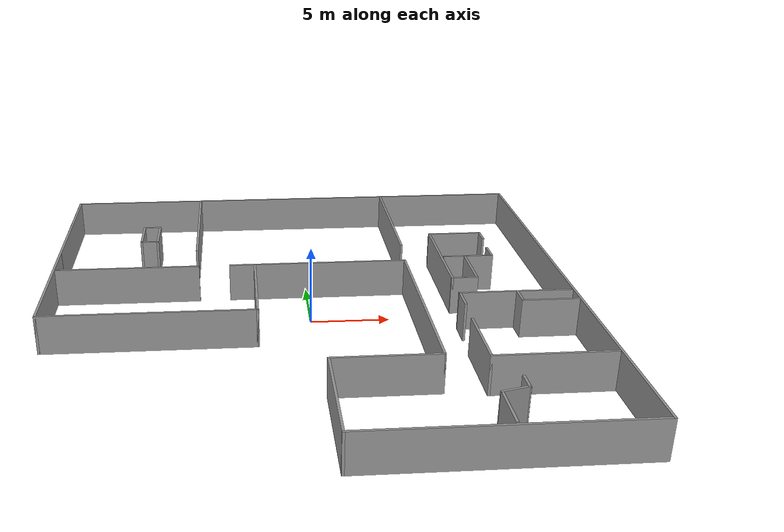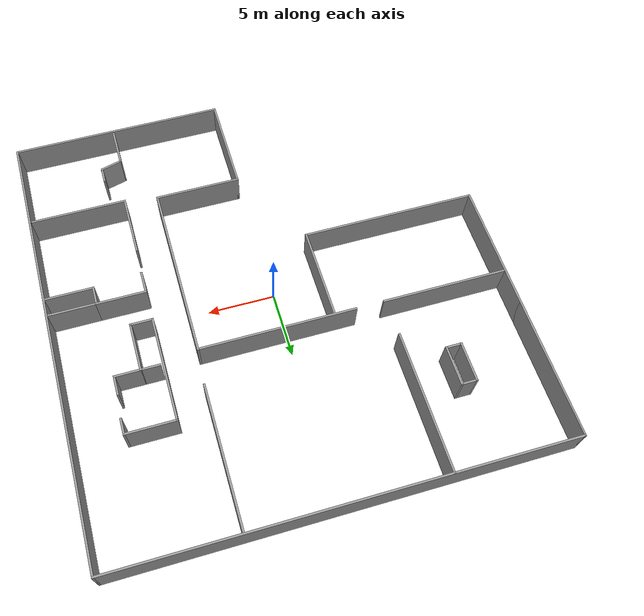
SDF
<?xml version='1.0'?>
<sdf version='1.6'>
  <model name='SnowberryCta'>
    <pose frame=''>-0.117801 0.057911 0 0 -0 0</pose>
    <link name='Wall_1'>
      <collision name='Wall_1_Collision'>
        <geometry>
          <box>
            <size>20.25 0.15 2.5</size>
          </box>
        </geometry>
        <pose frame=''>0 0 1.25 0 -0 0</pose>
      </collision>
      <visual name='Wall_1_Visual'>
        <pose frame=''>0 0 1.25 0 -0 0</pose>
        <geometry>
          <box>
            <size>20.25 0.15 2.5</size>
          </box>
        </geometry>
        <material>
          <script>
            <uri>file://media/materials/scripts/gazebo.material</uri>
            <name>Gazebo/Grey</name>
          </script>
          <ambient>1 1 1 1</ambient>
        </material>
      </visual>
      <pose frame=''>-16.425 6.875 0 0 -0 1.5708</pose>
    </link>
    <link name='Wall_11'>
      <collision name='Wall_11_Collision'>
        <geometry>
          <box>
            <size>20.25 0.15 2.5</size>
          </box>
        </geometry>
        <pose frame=''>0 0 1.25 0 -0 0</pose>
      </collision>
      <visual name='Wall_11_Visual'>
        <pose frame=''>0 0 1.25 0 -0 0</pose>
        <geometry>
          <box>
            <size>20.25 0.15 2.5</size>
          </box>
        </geometry>
        <material>
          <script>
            <uri>file://media/materials/scripts/gazebo.material</uri>
            <name>Gazebo/Grey</name>
          </script>
          <ambient>1 1 1 1</ambient>
        </material>
      </visual>
      <pose frame=''>-16.425 6.875 0 0 -0 1.5708</pose>
    </link>
    <link name='Wall_12'>
      <collision name='Wall_12_Collision'>
        <geometry>
          <box>
            <size>20.25 0.15 2.5</size>
          </box>
        </geometry>
        <pose frame=''>0 0 1.25 0 -0 0</pose>
      </collision>
      <visual name='Wall_12_Visual'>
        <pose frame=''>0 0 1.25 0 -0 0</pose>
        <geometry>
          <box>
            <size>20.25 0.15 2.5</size>
          </box>
        </geometry>
        <material>
          <script>
            <uri>file://media/materials/scripts/gazebo.material</uri>
            <name>Gazebo/Grey</name>
          </script>
          <ambient>1 1 1 1</ambient>
        </material>
      </visual>
      <pose frame=''>-16.425 6.875 0 0 0 -1.5708</pose>
    </link>
    <link name='Wall_14'>
      <collision name='Wall_14_Collision'>
        <geometry>
          <box>
            <size>20.25 0.15 2.5</size>
          </box>
        </geometry>
        <pose frame=''>0 0 1.25 0 -0 0</pose>
      </collision>
      <visual name='Wall_14_Visual'>
        <pose frame=''>0 0 1.25 0 -0 0</pose>
        <geometry>
          <box>
            <size>20.25 0.15 2.5</size>
          </box>
        </geometry>
        <material>
          <script>
            <uri>file://media/materials/scripts/gazebo.material</uri>
            <name>Gazebo/Grey</name>
          </script>
          <ambient>1 1 1 1</ambient>
        </material>
      </visual>
      <pose frame=''>-16.425 6.875 0 0 -0 1.5708</pose>
    </link>
    <link name='Wall_19'>
      <collision name='Wall_19_Collision'>
        <geometry>
          <box>
            <size>9.5 0.15 2.5</size>
          </box>
        </geometry>
        <pose frame=''>0 0 1.25 0 -0 0</pose>
      </collision>
      <visual name='Wall_19_Visual'>
        <pose frame=''>0 0 1.25 0 -0 0</pose>
        <geometry>
          <box>
            <size>9.5 0.15 2.5</size>
          </box>
        </geometry>
        <material>
          <script>
            <uri>file://media/materials/scripts/gazebo.material</uri>
            <name>Gazebo/Grey</name>
          </script>
          <ambient>1 1 1 1</ambient>
        </material>
      </visual>
      <pose frame=''>-11.7334 3.76219 0 0 -0 0</pose>
    </link>
    <link name='Wall_2'>
      <collision name='Wall_2_Collision'>
        <geometry>
          <box>
            <size>33 0.15 2.5</size>
          </box>
        </geometry>
        <pose frame=''>0 0 1.25 0 -0 0</pose>
      </collision>
      <visual name='Wall_2_Visual'>
        <pose frame=''>0 0 1.25 0 -0 0</pose>
        <geometry>
          <box>
            <size>33 0.15 2.5</size>
          </box>
        </geometry>
        <material>
          <script>
            <uri>file://media/materials/scripts/gazebo.material</uri>
            <name>Gazebo/Grey</name>
          </script>
          <ambient>1 1 1 1</ambient>
        </material>
      </visual>
      <pose frame=''>-1e-06 16.925 0 0 -0 0</pose>
    </link>
    <link name='Wall_21'>
      <collision name='Wall_21_Collision'>
        <geometry>
          <box>
            <size>10.5 0.15 2.5</size>
          </box>
        </geometry>
        <pose frame=''>0 0 1.25 0 -0 0</pose>
      </collision>
      <visual name='Wall_21_Visual'>
        <pose frame=''>0 0 1.25 0 -0 0</pose>
        <geometry>
          <box>
            <size>10.5 0.15 2.5</size>
          </box>
        </geometry>
        <material>
          <script>
            <uri>file://media/materials/scripts/gazebo.material</uri>
            <name>Gazebo/Grey</name>
          </script>
          <ambient>1 1 1 1</ambient>
        </material>
      </visual>
      <pose frame=''>-7.19843 11.7436 0 0 0 -1.5708</pose>
    </link>
    <link name='Wall_23'>
      <collision name='Wall_23_Collision'>
        <geometry>
          <box>
            <size>10.5 0.15 2.5</size>
          </box>
        </geometry>
        <pose frame=''>0 0 1.25 0 -0 0</pose>
      </collision>
      <visual name='Wall_23_Visual'>
        <pose frame=''>0 0 1.25 0 -0 0</pose>
        <geometry>
          <box>
            <size>10.5 0.15 2.5</size>
          </box>
        </geometry>
        <material>
          <script>
            <uri>file://media/materials/scripts/gazebo.material</uri>
            <name>Gazebo/Grey</name>
          </script>
          <ambient>1 1 1 1</ambient>
        </material>
      </visual>
      <pose frame=''>6.88223 11.6728 0 0 0 -1.5708</pose>
    </link>
    <link name='Wall_25'>
      <collision name='Wall_25_Collision'>
        <geometry>
          <box>
            <size>13.25 0.15 2.5</size>
          </box>
        </geometry>
        <pose frame=''>0 0 1.25 0 -0 0</pose>
      </collision>
      <visual name='Wall_25_Visual'>
        <pose frame=''>0 0 1.25 0 -0 0</pose>
        <geometry>
          <box>
            <size>13.25 0.15 2.5</size>
          </box>
        </geometry>
        <material>
          <script>
            <uri>file://media/materials/scripts/gazebo.material</uri>
            <name>Gazebo/Grey</name>
          </script>
          <ambient>1 1 1 1</ambient>
        </material>
      </visual>
      <pose frame=''>-9.875 -3.175 0 0 -0 0</pose>
    </link>
    <link name='Wall_26'>
      <collision name='Wall_26_Collision'>
        <geometry>
          <box>
            <size>7 0.15 2.5</size>
          </box>
        </geometry>
        <pose frame=''>0 0 1.25 0 -0 0</pose>
      </collision>
      <visual name='Wall_26_Visual'>
        <pose frame=''>0 0 1.25 0 -0 0</pose>
        <geometry>
          <box>
            <size>7 0.15 2.5</size>
          </box>
        </geometry>
        <material>
          <script>
            <uri>file://media/materials/scripts/gazebo.material</uri>
            <name>Gazebo/Grey</name>
          </script>
          <ambient>1 1 1 1</ambient>
        </material>
      </visual>
      <pose frame=''>-3.325 0.25 0 0 -0 1.5708</pose>
    </link>
    <link name='Wall_28'>
      <collision name='Wall_28_Collision'>
        <geometry>
          <box>
            <size>1.25 0.15 2.5</size>
          </box>
        </geometry>
        <pose frame=''>0 0 1.25 0 -0 0</pose>
      </collision>
      <visual name='Wall_28_Visual'>
        <pose frame=''>0 0 1.25 0 -0 0</pose>
        <geometry>
          <box>
            <size>1.25 0.15 2.5</size>
          </box>
        </geometry>
        <material>
          <script>
            <uri>file://media/materials/scripts/gazebo.material</uri>
            <name>Gazebo/Grey</name>
          </script>
          <ambient>1 1 1 1</ambient>
        </material>
      </visual>
      <pose frame=''>12.8258 7.91637 0 0 -0 1.5708</pose>
    </link>
    <link name='Wall_29'>
      <collision name='Wall_29_Collision'>
        <geometry>
          <box>
            <size>3.75 0.15 2.5</size>
          </box>
        </geometry>
        <pose frame=''>0 0 1.25 0 -0 0</pose>
      </collision>
      <visual name='Wall_29_Visual'>
        <pose frame=''>0 0 1.25 0 -0 0</pose>
        <geometry>
          <box>
            <size>3.75 0.15 2.5</size>
          </box>
        </geometry>
        <material>
          <script>
            <uri>file://media/materials/scripts/gazebo.material</uri>
            <name>Gazebo/Grey</name>
          </script>
          <ambient>1 1 1 1</ambient>
        </material>
      </visual>
      <pose frame=''>11.0258 8.46637 0 0 -0 3.14159</pose>
    </link>
    <link name='Wall_3'>
      <collision name='Wall_3_Collision'>
        <geometry>
          <box>
            <size>34 0.15 2.5</size>
          </box>
        </geometry>
        <pose frame=''>0 0 1.25 0 -0 0</pose>
      </collision>
      <visual name='Wall_3_Visual'>
        <pose frame=''>0 0 1.25 0 -0 0</pose>
        <geometry>
          <box>
            <size>34 0.15 2.5</size>
          </box>
        </geometry>
        <material>
          <script>
            <uri>file://media/materials/scripts/gazebo.material</uri>
            <name>Gazebo/Grey</name>
          </script>
          <ambient>1 1 1 1</ambient>
        </material>
      </visual>
      <pose frame=''>16.425 0 0 0 0 -1.5708</pose>
    </link>
    <link name='Wall_30'>
      <collision name='Wall_30_Collision'>
        <geometry>
          <box>
            <size>8 0.15 2.5</size>
          </box>
        </geometry>
        <pose frame=''>0 0 1.25 0 -0 0</pose>
      </collision>
      <visual name='Wall_30_Visual'>
        <pose frame=''>0 0 1.25 0 -0 0</pose>
        <geometry>
          <box>
            <size>8 0.15 2.5</size>
          </box>
        </geometry>
        <material>
          <script>
            <uri>file://media/materials/scripts/gazebo.material</uri>
            <name>Gazebo/Grey</name>
          </script>
          <ambient>1 1 1 1</ambient>
        </material>
      </visual>
      <pose frame=''>9.22582 4.54137 0 0 0 -1.5708</pose>
    </link>
    <link name='Wall_31'>
      <collision name='Wall_31_Collision'>
        <geometry>
          <box>
            <size>1.75 0.15 2.5</size>
          </box>
        </geometry>
        <pose frame=''>0 0 1.25 0 -0 0</pose>
      </collision>
      <visual name='Wall_31_Visual'>
        <pose frame=''>0 0 1.25 0 -0 0</pose>
        <geometry>
          <box>
            <size>1.75 0.15 2.5</size>
          </box>
        </geometry>
        <material>
          <script>
            <uri>file://media/materials/scripts/gazebo.material</uri>
            <name>Gazebo/Grey</name>
          </script>
          <ambient>1 1 1 1</ambient>
        </material>
      </visual>
      <pose frame=''>10.0258 0.616369 0 0 -0 0</pose>
    </link>
    <link name='Wall_32'>
      <collision name='Wall_32_Collision'>
        <geometry>
          <box>
            <size>3.75 0.15 2.5</size>
          </box>
        </geometry>
        <pose frame=''>0 0 1.25 0 -0 0</pose>
      </collision>
      <visual name='Wall_32_Visual'>
        <pose frame=''>0 0 1.25 0 -0 0</pose>
        <geometry>
          <box>
            <size>3.75 0.15 2.5</size>
          </box>
        </geometry>
        <material>
          <script>
            <uri>file://media/materials/scripts/gazebo.material</uri>
            <name>Gazebo/Grey</name>
          </script>
          <ambient>1 1 1 1</ambient>
        </material>
      </visual>
      <pose frame=''>10.8258 2.41637 0 0 -0 1.5708</pose>
    </link>
    <link name='Wall_33'>
      <collision name='Wall_33_Collision'>
        <geometry>
          <box>
            <size>2 0.15 2.5</size>
          </box>
        </geometry>
        <pose frame=''>0 0 1.25 0 -0 0</pose>
      </collision>
      <visual name='Wall_33_Visual'>
        <pose frame=''>0 0 1.25 0 -0 0</pose>
        <geometry>
          <box>
            <size>2 0.15 2.5</size>
          </box>
        </geometry>
        <material>
          <script>
            <uri>file://media/materials/scripts/gazebo.material</uri>
            <name>Gazebo/Grey</name>
          </script>
          <ambient>1 1 1 1</ambient>
        </material>
      </visual>
      <pose frame=''>11.7508 4.21637 0 0 -0 0</pose>
    </link>
    <link name='Wall_34'>
      <collision name='Wall_34_Collision'>
        <geometry>
          <box>
            <size>1.5 0.15 2.5</size>
          </box>
        </geometry>
        <pose frame=''>0 0 1.25 0 -0 0</pose>
      </collision>
      <visual name='Wall_34_Visual'>
        <pose frame=''>0 0 1.25 0 -0 0</pose>
        <geometry>
          <box>
            <size>1.5 0.15 2.5</size>
          </box>
        </geometry>
        <material>
          <script>
            <uri>file://media/materials/scripts/gazebo.material</uri>
            <name>Gazebo/Grey</name>
          </script>
          <ambient>1 1 1 1</ambient>
        </material>
      </visual>
      <pose frame=''>12.6758 4.89137 0 0 -0 1.5708</pose>
    </link>
    <link name='Wall_36'>
      <collision name='Wall_36_Collision'>
        <geometry>
          <box>
            <size>1.5 0.15 2.5</size>
          </box>
        </geometry>
        <pose frame=''>0 0 1.25 0 -0 0</pose>
      </collision>
      <visual name='Wall_36_Visual'>
        <pose frame=''>0 0 1.25 0 -0 0</pose>
        <geometry>
          <box>
            <size>1.5 0.15 2.5</size>
          </box>
        </geometry>
        <material>
          <script>
            <uri>file://media/materials/scripts/gazebo.material</uri>
            <name>Gazebo/Grey</name>
          </script>
          <ambient>1 1 1 1</ambient>
        </material>
      </visual>
      <pose frame=''>10.1508 4.21637 0 0 -0 3.14159</pose>
    </link>
    <link name='Wall_38'>
      <collision name='Wall_38_Collision'>
        <geometry>
          <box>
            <size>1.75 0.15 2.5</size>
          </box>
        </geometry>
        <pose frame=''>0 0 1.25 0 -0 0</pose>
      </collision>
      <visual name='Wall_38_Visual'>
        <pose frame=''>0 0 1.25 0 -0 0</pose>
        <geometry>
          <box>
            <size>1.75 0.15 2.5</size>
          </box>
        </geometry>
        <material>
          <script>
            <uri>file://media/materials/scripts/gazebo.material</uri>
            <name>Gazebo/Grey</name>
          </script>
          <ambient>1 1 1 1</ambient>
        </material>
      </visual>
      <pose frame=''>9.21721 -2.51795 0 0 -0 1.5708</pose>
    </link>
    <link name='Wall_39'>
      <collision name='Wall_39_Collision'>
        <geometry>
          <box>
            <size>3.75 0.15 2.5</size>
          </box>
        </geometry>
        <pose frame=''>0 0 1.25 0 -0 0</pose>
      </collision>
      <visual name='Wall_39_Visual'>
        <pose frame=''>0 0 1.25 0 -0 0</pose>
        <geometry>
          <box>
            <size>3.75 0.15 2.5</size>
          </box>
        </geometry>
        <material>
          <script>
            <uri>file://media/materials/scripts/gazebo.material</uri>
            <name>Gazebo/Grey</name>
          </script>
          <ambient>1 1 1 1</ambient>
        </material>
      </visual>
      <pose frame=''>11.0172 -1.71795 0 0 -0 0</pose>
    </link>
    <link name='Wall_4'>
      <collision name='Wall_4_Collision'>
        <geometry>
          <box>
            <size>16.25 0.15 2.5</size>
          </box>
        </geometry>
        <pose frame=''>0 0 1.25 0 -0 0</pose>
      </collision>
      <visual name='Wall_4_Visual'>
        <pose frame=''>0 0 1.25 0 -0 0</pose>
        <geometry>
          <box>
            <size>16.25 0.15 2.5</size>
          </box>
        </geometry>
        <material>
          <script>
            <uri>file://media/materials/scripts/gazebo.material</uri>
            <name>Gazebo/Grey</name>
          </script>
          <ambient>1 1 1 1</ambient>
        </material>
      </visual>
      <pose frame=''>8.375 -16.925 0 0 -0 3.14159</pose>
    </link>
    <link name='Wall_40'>
      <collision name='Wall_40_Collision'>
        <geometry>
          <box>
            <size>1.5 0.15 2.5</size>
          </box>
        </geometry>
        <pose frame=''>0 0 1.25 0 -0 0</pose>
      </collision>
      <visual name='Wall_40_Visual'>
        <pose frame=''>0 0 1.25 0 -0 0</pose>
        <geometry>
          <box>
            <size>1.5 0.15 2.5</size>
          </box>
        </geometry>
        <material>
          <script>
            <uri>file://media/materials/scripts/gazebo.material</uri>
            <name>Gazebo/Grey</name>
          </script>
          <ambient>1 1 1 1</ambient>
        </material>
      </visual>
      <pose frame=''>12.8172 -2.39295 0 0 0 -1.5708</pose>
    </link>
    <link name='Wall_41'>
      <collision name='Wall_41_Collision'>
        <geometry>
          <box>
            <size>3.75 0.15 2.5</size>
          </box>
        </geometry>
        <pose frame=''>0 0 1.25 0 -0 0</pose>
      </collision>
      <visual name='Wall_41_Visual'>
        <pose frame=''>0 0 1.25 0 -0 0</pose>
        <geometry>
          <box>
            <size>3.75 0.15 2.5</size>
          </box>
        </geometry>
        <material>
          <script>
            <uri>file://media/materials/scripts/gazebo.material</uri>
            <name>Gazebo/Grey</name>
          </script>
          <ambient>1 1 1 1</ambient>
        </material>
      </visual>
      <pose frame=''>14.6172 -3.06795 0 0 -0 0</pose>
    </link>
    <link name='Wall_43'>
      <collision name='Wall_43_Collision'>
        <geometry>
          <box>
            <size>3.75 0.15 2.5</size>
          </box>
        </geometry>
        <pose frame=''>0 0 1.25 0 -0 0</pose>
      </collision>
      <visual name='Wall_43_Visual'>
        <pose frame=''>0 0 1.25 0 -0 0</pose>
        <geometry>
          <box>
            <size>3.75 0.15 2.5</size>
          </box>
        </geometry>
        <material>
          <script>
            <uri>file://media/materials/scripts/gazebo.material</uri>
            <name>Gazebo/Grey</name>
          </script>
          <ambient>1 1 1 1</ambient>
        </material>
      </visual>
      <pose frame=''>14.6172 -1.71795 0 0 -0 0</pose>
    </link>
    <link name='Wall_45'>
      <collision name='Wall_45_Collision'>
        <geometry>
          <box>
            <size>4.75 0.15 2.5</size>
          </box>
        </geometry>
        <pose frame=''>0 0 1.25 0 -0 0</pose>
      </collision>
      <visual name='Wall_45_Visual'>
        <pose frame=''>0 0 1.25 0 -0 0</pose>
        <geometry>
          <box>
            <size>4.75 0.15 2.5</size>
          </box>
        </geometry>
        <material>
          <script>
            <uri>file://media/materials/scripts/gazebo.material</uri>
            <name>Gazebo/Grey</name>
          </script>
          <ambient>1 1 1 1</ambient>
        </material>
      </visual>
      <pose frame=''>9.14645 -7.6699 0 0 0 -1.5708</pose>
    </link>
    <link name='Wall_46'>
      <collision name='Wall_46_Collision'>
        <geometry>
          <box>
            <size>7.25 0.15 2.5</size>
          </box>
        </geometry>
        <pose frame=''>0 0 1.25 0 -0 0</pose>
      </collision>
      <visual name='Wall_46_Visual'>
        <pose frame=''>0 0 1.25 0 -0 0</pose>
        <geometry>
          <box>
            <size>7.25 0.15 2.5</size>
          </box>
        </geometry>
        <material>
          <script>
            <uri>file://media/materials/scripts/gazebo.material</uri>
            <name>Gazebo/Grey</name>
          </script>
          <ambient>1 1 1 1</ambient>
        </material>
      </visual>
      <pose frame=''>12.6965 -9.9699 0 0 -0 0</pose>
    </link>
    <link name='Wall_48'>
      <collision name='Wall_48_Collision'>
        <geometry>
          <box>
            <size>1.25 0.15 2.5</size>
          </box>
        </geometry>
        <pose frame=''>0 0 1.25 0 -0 0</pose>
      </collision>
      <visual name='Wall_48_Visual'>
        <pose frame=''>0 0 1.25 0 -0 0</pose>
        <geometry>
          <box>
            <size>1.25 0.15 2.5</size>
          </box>
        </geometry>
        <material>
          <script>
            <uri>file://media/materials/scripts/gazebo.material</uri>
            <name>Gazebo/Grey</name>
          </script>
          <ambient>1 1 1 1</ambient>
        </material>
      </visual>
      <pose frame=''>10.2786 -12.8541 0 0 0 -1.5708</pose>
    </link>
    <link name='Wall_49'>
      <collision name='Wall_49_Collision'>
        <geometry>
          <box>
            <size>1.75 0.15 2.5</size>
          </box>
        </geometry>
        <pose frame=''>0 0 1.25 0 -0 0</pose>
      </collision>
      <visual name='Wall_49_Visual'>
        <pose frame=''>0 0 1.25 0 -0 0</pose>
        <geometry>
          <box>
            <size>1.75 0.15 2.5</size>
          </box>
        </geometry>
        <material>
          <script>
            <uri>file://media/materials/scripts/gazebo.material</uri>
            <name>Gazebo/Grey</name>
          </script>
          <ambient>1 1 1 1</ambient>
        </material>
      </visual>
      <pose frame=''>9.50582 -13.6111 0 0 0 -2.87979</pose>
    </link>
    <link name='Wall_5'>
      <collision name='Wall_5_Collision'>
        <geometry>
          <box>
            <size>7.5 0.15 2.5</size>
          </box>
        </geometry>
        <pose frame=''>0 0 1.25 0 -0 0</pose>
      </collision>
      <visual name='Wall_5_Visual'>
        <pose frame=''>0 0 1.25 0 -0 0</pose>
        <geometry>
          <box>
            <size>7.5 0.15 2.5</size>
          </box>
        </geometry>
        <material>
          <script>
            <uri>file://media/materials/scripts/gazebo.material</uri>
            <name>Gazebo/Grey</name>
          </script>
          <ambient>1 1 1 1</ambient>
        </material>
      </visual>
      <pose frame=''>0.324999 -13.25 0 0 -0 1.5708</pose>
    </link>
    <link name='Wall_50'>
      <collision name='Wall_50_Collision'>
        <geometry>
          <box>
            <size>3 0.15 2.5</size>
          </box>
        </geometry>
        <pose frame=''>0 0 1.25 0 -0 0</pose>
      </collision>
      <visual name='Wall_50_Visual'>
        <pose frame=''>0 0 1.25 0 -0 0</pose>
        <geometry>
          <box>
            <size>3 0.15 2.5</size>
          </box>
        </geometry>
        <material>
          <script>
            <uri>file://media/materials/scripts/gazebo.material</uri>
            <name>Gazebo/Grey</name>
          </script>
          <ambient>1 1 1 1</ambient>
        </material>
      </visual>
      <pose frame=''>8.73308 -15.2432 0 0 0 -1.5708</pose>
    </link>
    <link name='Wall_52'>
      <collision name='Wall_52_Collision'>
        <geometry>
          <box>
            <size>3 0.15 2.5</size>
          </box>
        </geometry>
        <pose frame=''>0 0 1.25 0 -0 0</pose>
      </collision>
      <visual name='Wall_52_Visual'>
        <pose frame=''>0 0 1.25 0 -0 0</pose>
        <geometry>
          <box>
            <size>3 0.15 2.5</size>
          </box>
        </geometry>
        <material>
          <script>
            <uri>file://media/materials/scripts/gazebo.material</uri>
            <name>Gazebo/Grey</name>
          </script>
          <ambient>1 1 1 1</ambient>
        </material>
      </visual>
      <pose frame=''>-11.0901 9.85272 0 0 -0 1.5708</pose>
    </link>
    <link name='Wall_53'>
      <collision name='Wall_53_Collision'>
        <geometry>
          <box>
            <size>1.25 0.15 2.5</size>
          </box>
        </geometry>
        <pose frame=''>0 0 1.25 0 -0 0</pose>
      </collision>
      <visual name='Wall_53_Visual'>
        <pose frame=''>0 0 1.25 0 -0 0</pose>
        <geometry>
          <box>
            <size>1.25 0.15 2.5</size>
          </box>
        </geometry>
        <material>
          <script>
            <uri>file://media/materials/scripts/gazebo.material</uri>
            <name>Gazebo/Grey</name>
          </script>
          <ambient>1 1 1 1</ambient>
        </material>
      </visual>
      <pose frame=''>-10.5401 11.2777 0 0 -0 0</pose>
    </link>
    <link name='Wall_54'>
      <collision name='Wall_54_Collision'>
        <geometry>
          <box>
            <size>3 0.15 2.5</size>
          </box>
        </geometry>
        <pose frame=''>0 0 1.25 0 -0 0</pose>
      </collision>
      <visual name='Wall_54_Visual'>
        <pose frame=''>0 0 1.25 0 -0 0</pose>
        <geometry>
          <box>
            <size>3 0.15 2.5</size>
          </box>
        </geometry>
        <material>
          <script>
            <uri>file://media/materials/scripts/gazebo.material</uri>
            <name>Gazebo/Grey</name>
          </script>
          <ambient>1 1 1 1</ambient>
        </material>
      </visual>
      <pose frame=''>-9.99007 9.85272 0 0 0 -1.5708</pose>
    </link>
    <link name='Wall_55'>
      <collision name='Wall_55_Collision'>
        <geometry>
          <box>
            <size>1.25 0.15 2.5</size>
          </box>
        </geometry>
        <pose frame=''>0 0 1.25 0 -0 0</pose>
      </collision>
      <visual name='Wall_55_Visual'>
        <pose frame=''>0 0 1.25 0 -0 0</pose>
        <geometry>
          <box>
            <size>1.25 0.15 2.5</size>
          </box>
        </geometry>
        <material>
          <script>
            <uri>file://media/materials/scripts/gazebo.material</uri>
            <name>Gazebo/Grey</name>
          </script>
          <ambient>1 1 1 1</ambient>
        </material>
      </visual>
      <pose frame=''>-10.5401 8.42773 0 0 -0 3.14159</pose>
    </link>
    <link name='Wall_6'>
      <collision name='Wall_6_Collision'>
        <geometry>
          <box>
            <size>6.5 0.15 2.5</size>
          </box>
        </geometry>
        <pose frame=''>0 0 1.25 0 -0 0</pose>
      </collision>
      <visual name='Wall_6_Visual'>
        <pose frame=''>0 0 1.25 0 -0 0</pose>
        <geometry>
          <box>
            <size>6.5 0.15 2.5</size>
          </box>
        </geometry>
        <material>
          <script>
            <uri>file://media/materials/scripts/gazebo.material</uri>
            <name>Gazebo/Grey</name>
          </script>
          <ambient>1 1 1 1</ambient>
        </material>
      </visual>
      <pose frame=''>3.5 -9.575 0 0 -0 0</pose>
    </link>
    <link name='Wall_7'>
      <collision name='Wall_7_Collision'>
        <geometry>
          <box>
            <size>13.5 0.15 2.5</size>
          </box>
        </geometry>
        <pose frame=''>0 0 1.25 0 -0 0</pose>
      </collision>
      <visual name='Wall_7_Visual'>
        <pose frame=''>0 0 1.25 0 -0 0</pose>
        <geometry>
          <box>
            <size>13.5 0.15 2.5</size>
          </box>
        </geometry>
        <material>
          <script>
            <uri>file://media/materials/scripts/gazebo.material</uri>
            <name>Gazebo/Grey</name>
          </script>
          <ambient>1 1 1 1</ambient>
        </material>
      </visual>
      <pose frame=''>6.675 -2.9 0 0 -0 1.5708</pose>
    </link>
    <link name='Wall_8'>
      <collision name='Wall_8_Collision'>
        <geometry>
          <box>
            <size>11.75 0.15 2.5</size>
          </box>
        </geometry>
        <pose frame=''>0 0 1.25 0 -0 0</pose>
      </collision>
      <visual name='Wall_8_Visual'>
        <pose frame=''>0 0 1.25 0 -0 0</pose>
        <geometry>
          <box>
            <size>11.75 0.15 2.5</size>
          </box>
        </geometry>
        <material>
          <script>
            <uri>file://media/materials/scripts/gazebo.material</uri>
            <name>Gazebo/Grey</name>
          </script>
          <ambient>1 1 1 1</ambient>
        </material>
      </visual>
      <pose frame=''>0.874999 3.775 0 0 -0 3.14159</pose>
    </link>
    <static>1</static>
  </model>
</sdf>
